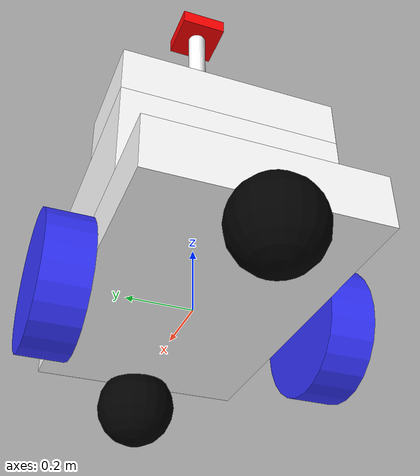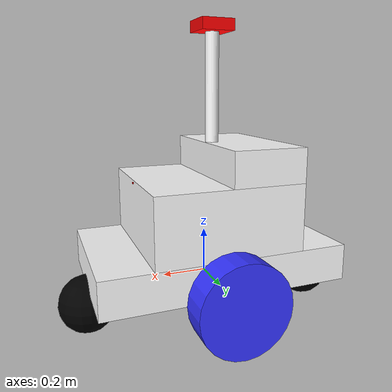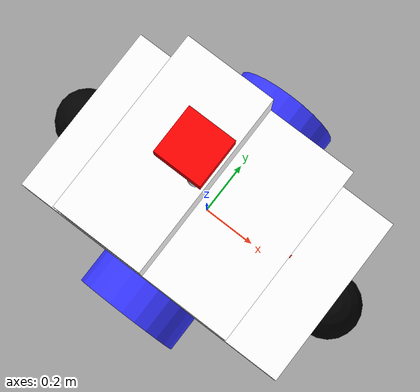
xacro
<?xml version="1.0"?>
<robot xmlns:xacro="http://www.ros.org/wiki/xacro">

    <xacro:include filename="inertial_macros.xacro" />

    <material name="white">
        <color rgba="1 1 1 1" />
    </material>

    <material name="orange">
        <color rgba="1 0.3 0.1 1"/>
    </material>

    <material name="blue">
        <color rgba="0.2 0.2 1 1"/>
    </material>

    <material name="black">
        <color rgba="0 0 0 1"/>
    </material>

    <material name="red">
        <color rgba="1 0 0 1"/>
    </material>

    <!--BASE LINK-->
    <link name="base_link">

    </link>

    <!-- BASE FOOTPRINT LINK-->

    <joint name="base_footprint_joint" type="fixed">
        <parent link="base_link" />
        <child link="base_footprint" />
        <origin xyz="0 0 0" rpy="0 0 0" />
    </joint>

    <link name="base_footprint">
    </link>

    <!--CHASSIS LINK-->
    <joint name="chassis_joint" type="fixed">
        <parent link="base_link" />
        <child link="chassis" />
        <origin xyz="-0.5495 0 0" />
    </joint>

    <link name="chassis">
        <visual>
            <origin xyz="0.5495 0 0.08135" />
            <geometry>
                <box size="1.099 0.6689 0.1627" />
            </geometry>
            <material name="white" />
        </visual>
        <collision>
            <origin xyz="0.5495 0 0.08135" />
            <geometry>
                <box size="1.099 0.6689 0.1627" />
            </geometry>
        </collision>
        <xacro:inertial_box mass="29.58" x="1.099" y="0.6689" z="0.1627">
            <origin xyz="0.5495 0 0.08135" rpy="0 0 0" />
        </xacro:inertial_box>
    </link>

    <gazebo reference="chassis">
        <material>Gazebo/White</material>
    </gazebo>

    <!--LEFT WHEEL LINK-->
    <joint name="left_wheel_joint" type="continuous">
        <parent link="base_link"/>
        <child link="left_wheel"/>
        <origin xyz="0 0.33445 0" rpy="-${pi/2} 0 0" />
        <axis xyz="0 0 1" />
    </joint>

    <link name="left_wheel">
        <visual>
            <origin xyz="0 0 0.0681" />
            <geometry>
                <cylinder radius="0.202" length=".1362" />
            </geometry>
            <material name="blue" />
        </visual>
        <collision>
            <origin xyz="0 0 0.0681" />
            <geometry>
                <sphere radius="0.202" />
            </geometry>
        </collision>
        <xacro:inertial_cylinder mass="6.41" length=".1362" radius="0.202">
            <origin xyz="0 0 0.0681" rpy="0 0 0" />
        </xacro:inertial_cylinder>
    </link>

    <gazebo reference="left_wheel">
        <material>Gazebo/Blue</material>
    </gazebo>

    <!--RIGHT WHEEL LINK-->
    <joint name="right_wheel_joint" type="continuous">
        <parent link="base_link"/>
        <child link="right_wheel"/>
        <origin xyz="0 -0.33445 0" rpy="${pi/2} 0 0" />
        <axis xyz="0 0 -1" />
    </joint>

    <link name="right_wheel">
        <visual>
            <origin xyz="0 0 0.0681" />
            <geometry>
                <cylinder radius="0.202" length=".1362" />
            </geometry>
            <material name="blue" />
        </visual>
        <collision>
            <origin xyz="0 0 0.0681" />
            <geometry>
                <sphere radius="0.202" />
            </geometry>
        </collision>
        <xacro:inertial_cylinder mass="6.41" length=".1362" radius="0.202">
            <origin xyz="0 0 0.0681" rpy="0 0 0" />
        </xacro:inertial_cylinder>
    </link>

    <gazebo reference="right_wheel">
        <material>Gazebo/Blue</material>
    </gazebo>

    <!--FRONT CASTER WHEEL LINK-->
    <joint name="front_caster_wheel_joint" type="fixed">
        <parent link="chassis" />
        <child link="front_caster_wheel" />
        <origin xyz="1.099 0 -0.075" />
    </joint>

    <link name="front_caster_wheel">
        <visual>
            <geometry>
                <sphere radius="0.127" />
            </geometry>
            <material name="black" />
        </visual>
        <collision>
            <geometry>
                <sphere radius="0.127" />
            </geometry>
        </collision>
        <xacro:inertial_sphere mass="2.27" radius="0.05">
            <origin xyz="0 0 0" rpy="0 0 0" />
        </xacro:inertial_sphere>
    </link>

    <gazebo reference="front_caster_wheel">
        <material>Gazebo/Black</material>
        <mu1 value="0.001" />
        <mu2 value="0.001" />
    </gazebo>

    <!--REAR CASTER WHEEL LINK-->
    <joint name="rear_caster_wheel_joint" type="fixed">
        <parent link="chassis" />
        <child link="rear_caster_wheel" />
        <origin xyz="0 0 -0.075" />
    </joint>

    <link name="rear_caster_wheel">
        <visual>
            <geometry>
                <sphere radius="0.127" />
            </geometry>
            <material name="black" />
        </visual>
        <collision>
            <geometry>
                <sphere radius="0.127" />
            </geometry>
        </collision>
        <xacro:inertial_sphere mass="2.27" radius="0.05">
            <origin xyz="0 0 0" rpy="0 0 0" />
        </xacro:inertial_sphere>
    </link>

    <gazebo reference="rear_caster_wheel">
        <material>Gazebo/Black</material>
        <mu1 value="0.001" />
        <mu2 value="0.001" />
    </gazebo>

    <!--BOTTOM FRAME-->
    <joint name="bottom_frame_joint" type="fixed">
        <parent link="chassis" />
        <child link="bottom_frame" />
        <origin xyz="0.2197 0 0.1627" />
    </joint>

    <link name="bottom_frame">
        <visual>
            <origin xyz="0.3298 0 0.14925" />
            <geometry>
                <box size="0.6596 0.6689 0.2985" />
            </geometry>
            <material name="white" />
        </visual>
        <collision>
            <origin xyz="0.3298 0 0.14925" />
            <geometry>
                <box size="0.6596 0.6689 0.2985" />
            </geometry>
        </collision>
        <xacro:inertial_box mass="8.22" x="0.6596" y="0.6689" z="0.2985">
            <origin xyz="0.3298 0 0.14925" rpy="0 0 0" />
        </xacro:inertial_box>
    </link>

    <gazebo reference="bottom_frame">
        <material>Gazebo/White</material>
    </gazebo>

    <!--TOP FRAME-->
    <joint name="top_frame_joint" type="fixed">
        <parent link="bottom_frame" />
        <child link="top_frame" />
        <origin xyz="0 0 0.2985" />
    </joint>

    <link name="top_frame">
        <visual>
            <origin xyz="0.1651 0 0.0762" />
            <geometry>
                <box size="0.3302 0.6689 0.1524" />
            </geometry>
            <material name="white" />
        </visual>
        <collision>
            <origin xyz="0.1651 0 0.0762" />
            <geometry>
                <box size="0.3302 0.6689 0.1524" />
            </geometry>
        </collision>
        <xacro:inertial_box mass="8.22" x="0.3302" y="0.6689" z="0.1524">
            <origin xyz="0.1651 0 0.0762" rpy="0 0 0" />
        </xacro:inertial_box>
    </link>

    <gazebo reference="top_frame">
        <material>Gazebo/White</material>
    </gazebo>

    <!--GPS HOLDER + LIGHTS-->
    <joint name="gps_holder_joint" type="fixed">
        <parent link="top_frame" />
        <child link="gps_holder_link" />
        <origin xyz="0.29 0 0.1524" />
    </joint>

    <link name="gps_holder_link">
        <visual>
            <origin xyz="0 0 0.2525" />
            <geometry>
                <cylinder radius="0.030" length="0.505" />
            </geometry>
            <material name="white" />
        </visual>
        <collision>
            <origin xyz="0 0 0.2525" />
            <geometry>
                <cylinder radius="0.030" length="0.505" />
            </geometry>
        </collision>
        <xacro:inertial_cylinder mass="0.34" length="0.505" radius="0.030">
            <origin xyz="0 0 0.2525" rpy="0 0 0" />
        </xacro:inertial_cylinder>
    </link>

    <gazebo reference="gps_holder_link">
        <material>Gazebo/White</material>
    </gazebo>

    <!--GPS-->
    <joint name="gps_joint" type="fixed">
        <parent link="gps_holder_link" />
        <child link="gps_link" />
        <origin xyz="0 0 0.505" />
    </joint>

    <link name="gps_link">
        <visual>
            <origin xyz="-0 0 0" />
            <geometry>
                <box size="0.150 0.150 0.050" />
            </geometry>
            <material name="red" />
        </visual>
        <collision>
            <origin xyz="-0 0 0" />
            <geometry>
                <box size="0.150 0.150 0.050"  />
            </geometry>
        </collision>
        <xacro:inertial_box mass="0.13" x="0.150" y="0.150" z="0.050">
            <origin xyz="0 0 0" rpy="0 0 0" />
        </xacro:inertial_box>
    </link>

    <gazebo reference="gps_link">
        <material>Gazebo/Red</material>
    </gazebo>

    <!--IMU-->
    <joint name="imu_joint" type="fixed">
        <parent link="bottom_frame" />
        <child link="imu_link" />
        <origin xyz="0.658 0 0.2858" />
    </joint>

    <link name="imu_link">
        <visual>
            <origin xyz="0 0 0" />
            <geometry>
                <box size="0.01 0.01 0.007" />
            </geometry>
            <material name="red" />
        </visual>
        <collision>
            <origin xyz="0 0 0" />
            <geometry>
                <box size="0.01 0.01 0.007"  />
            </geometry>
        </collision>
        <xacro:inertial_box mass="0.13" x="0.01" y="0.01" z="0.007">
            <origin xyz="0 0 0" rpy="0 0 0" />
        </xacro:inertial_box>
    </link>

    <gazebo reference="imu_link">
        <material>Gazebo/Red</material>
    </gazebo>

</robot>
